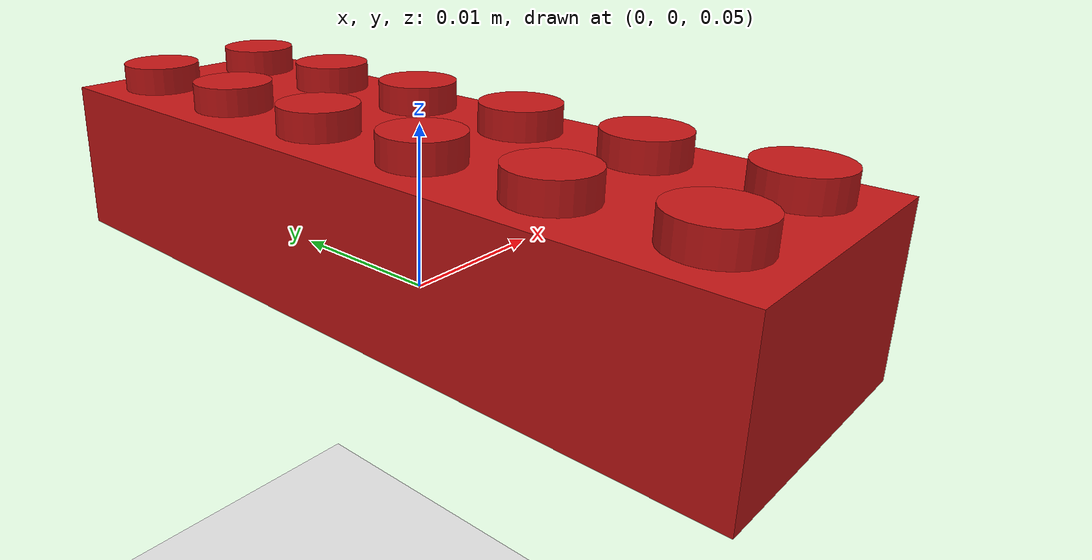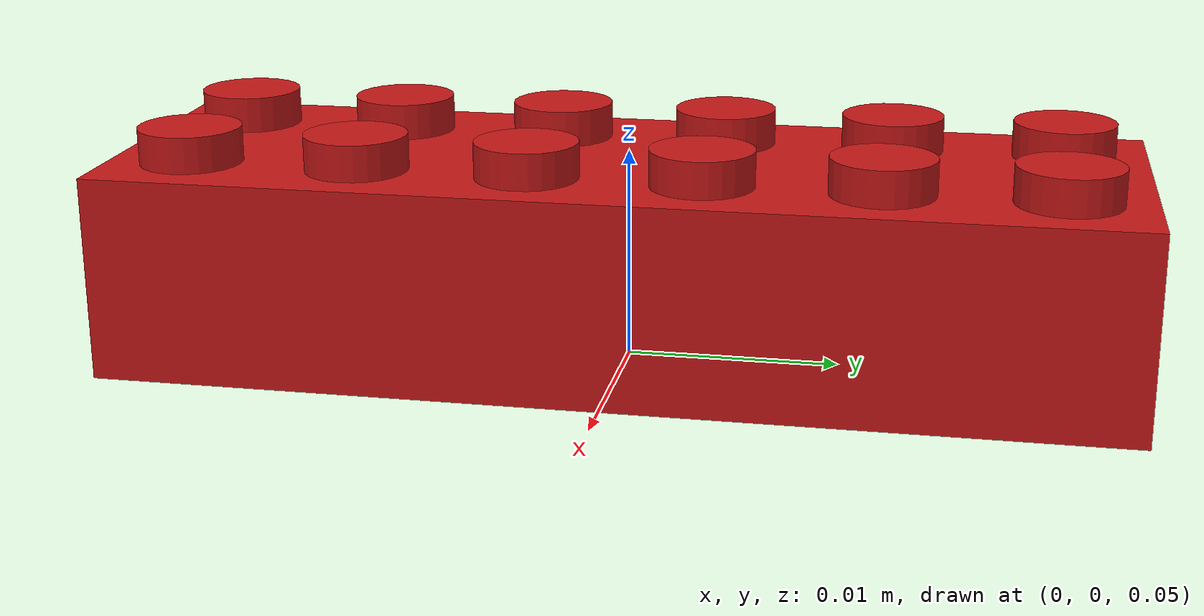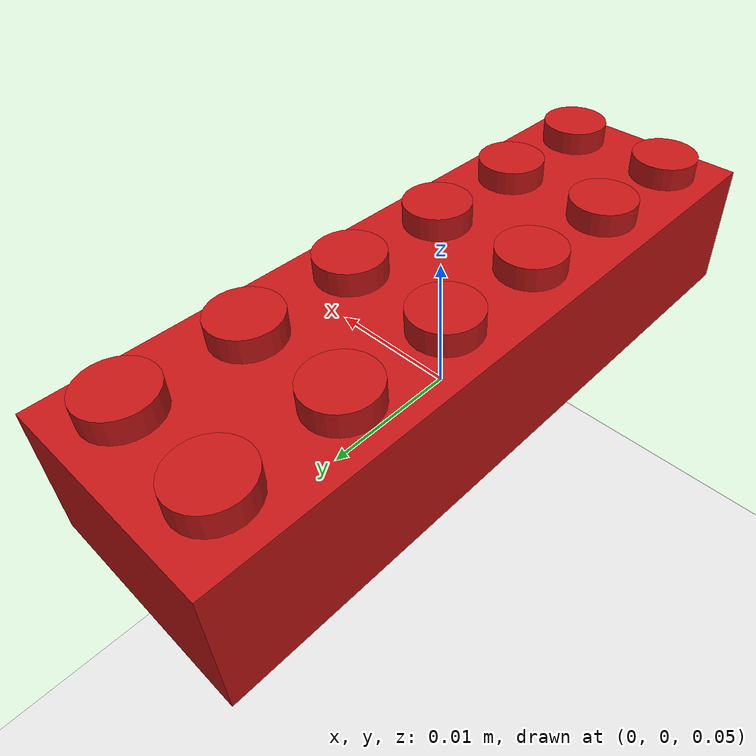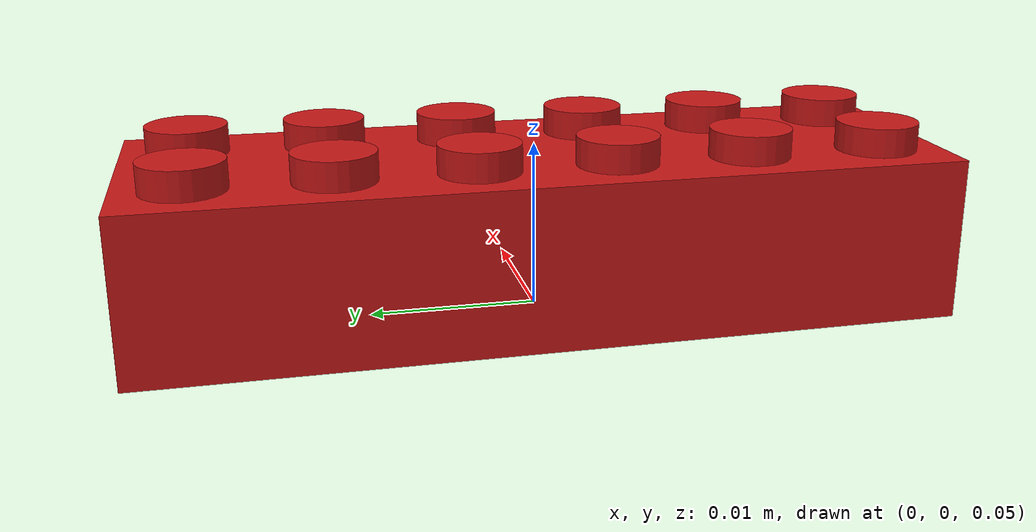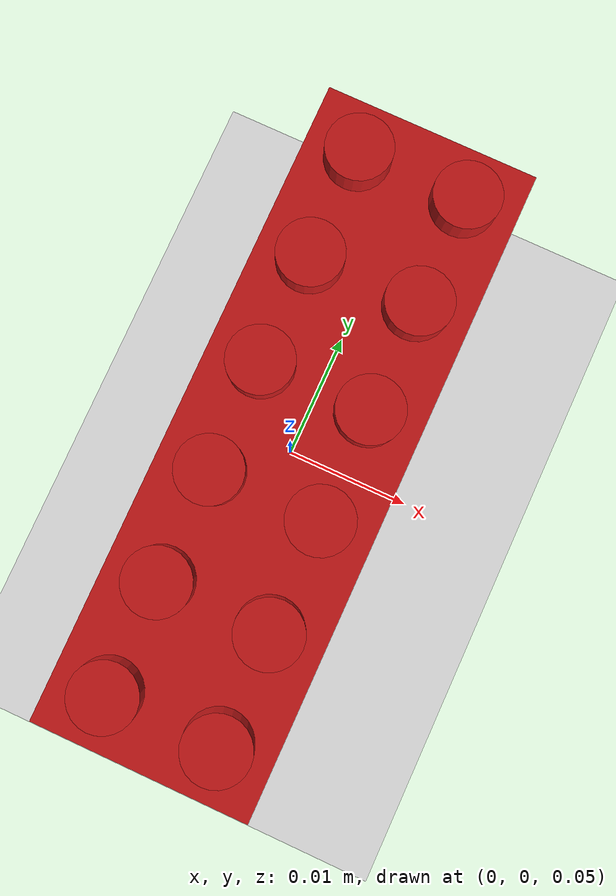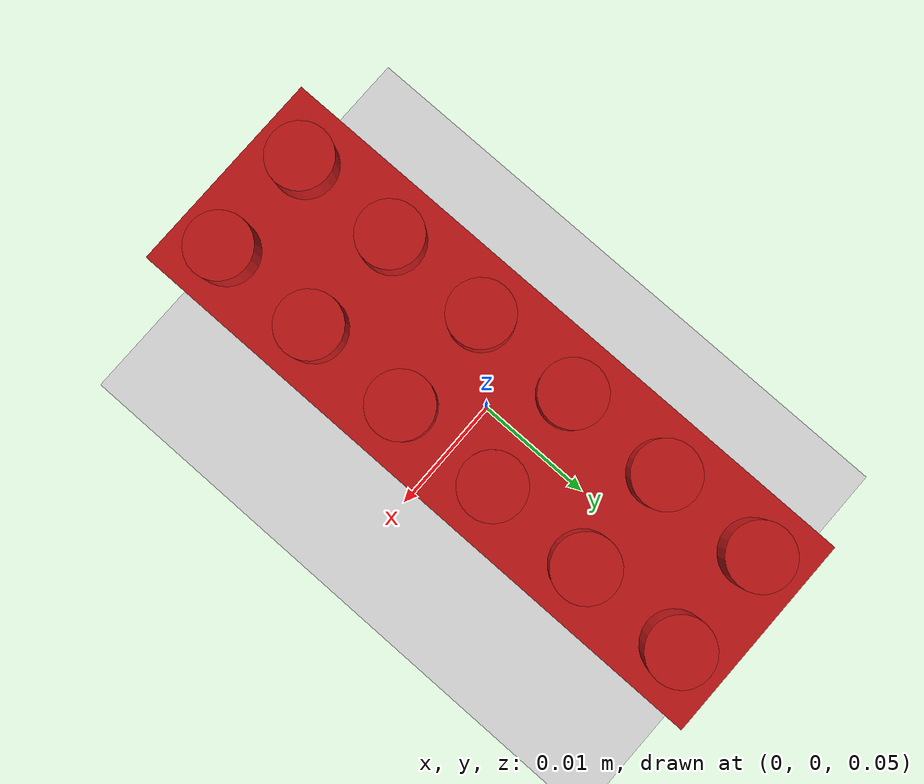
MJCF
<mujoco model="brick_2x6">
    <compiler inertiafromgeom="auto" angle="radian" />
    <option timestep="0.002" gravity="0 0 -9.81" integrator="implicitfast" cone="pyramidal" solver="Newton" iterations="80" ls_iterations="10" />
    <default>
        <default class="lego/stud">
            <geom contype="6" conaffinity="7" solref="0.003 1.0" solimp="0.97 0.995 0.001 0.5 4" friction="0.65 0.005 0.005" condim="4" />
        </default>
        <default class="lego/tube">
            <geom contype="4" conaffinity="4" solref="0.003 1.0" solimp="0.97 0.995 0.001 0.5 4" friction="0.65 0.005 0.005" condim="4" />
        </default>
        <default class="lego/brick_surface">
            <geom contype="2" conaffinity="3" solref="0.005 1.0" solimp="0.9 0.95 0.001 0.5 2" friction="0.4 0.005 0.002" condim="3" />
        </default>
        <default class="lego/baseplate">
            <geom contype="2" conaffinity="3" solref="0.005 1.0" solimp="0.9 0.95 0.001 0.5 2" friction="0.6 0.01 0.005" condim="3" />
        </default>
    </default>
    <worldbody>
        <light diffuse="0.8 0.8 0.8" pos="0 0 1" dir="0 0 -1" />
        <geom name="floor" type="plane" size="1 1 0.1" rgba="0.9 0.9 0.9 1" contype="1" conaffinity="1" />
        <body name="brick_2x6" pos="0 0 0.05">
            <freejoint name="brick_2x6_joint" />
            <inertial pos="0 0 0.0048" mass="0.002671" diaginertia="0.0000005291 0.0000000761 0.0000005642" />
            <geom class="lego/brick_surface" name="brick_2x6_shell_top" type="box" size="0.0079 0.0239 0.0005" pos="0 0 0.0091" group="3" />
            <geom class="lego/brick_surface" name="brick_2x6_shell_lx" type="box" size="0.0006 0.0239 0.0048" pos="-0.0073 0 0.0048" group="3" />
            <geom class="lego/brick_surface" name="brick_2x6_shell_rx" type="box" size="0.0006 0.0239 0.0048" pos="0.0073 0 0.0048" group="3" />
            <geom class="lego/brick_surface" name="brick_2x6_shell_fy" type="box" size="0.0067 0.0006 0.0048" pos="0 0.0233 0.0048" group="3" />
            <geom class="lego/brick_surface" name="brick_2x6_shell_by" type="box" size="0.0067 0.0006 0.0048" pos="0 -0.0233 0.0048" group="3" />
            <geom name="brick_2x6_shell_vis" type="box" size="0.0079 0.0239 0.0048" pos="0 0 0.0048" group="0" contype="0" conaffinity="0" rgba="0.78 0.09 0.09 1" />
            <geom class="lego/stud" name="brick_2x6_stud_0_0" type="cylinder" size="0.00235 0.00085" pos="-0.004 -0.02 0.01045" group="3" />
            <geom name="brick_2x6_stud_0_0_vis" type="cylinder" size="0.0024 0.00085" pos="-0.004 -0.02 0.01045" group="0" contype="0" conaffinity="0" rgba="0.78 0.09 0.09 1" />
            <geom class="lego/stud" name="brick_2x6_stud_0_1" type="cylinder" size="0.00235 0.00085" pos="-0.004 -0.012 0.01045" group="3" />
            <geom name="brick_2x6_stud_0_1_vis" type="cylinder" size="0.0024 0.00085" pos="-0.004 -0.012 0.01045" group="0" contype="0" conaffinity="0" rgba="0.78 0.09 0.09 1" />
            <geom class="lego/stud" name="brick_2x6_stud_0_2" type="cylinder" size="0.00235 0.00085" pos="-0.004 -0.004 0.01045" group="3" />
            <geom name="brick_2x6_stud_0_2_vis" type="cylinder" size="0.0024 0.00085" pos="-0.004 -0.004 0.01045" group="0" contype="0" conaffinity="0" rgba="0.78 0.09 0.09 1" />
            <geom class="lego/stud" name="brick_2x6_stud_0_3" type="cylinder" size="0.00235 0.00085" pos="-0.004 0.004 0.01045" group="3" />
            <geom name="brick_2x6_stud_0_3_vis" type="cylinder" size="0.0024 0.00085" pos="-0.004 0.004 0.01045" group="0" contype="0" conaffinity="0" rgba="0.78 0.09 0.09 1" />
            <geom class="lego/stud" name="brick_2x6_stud_0_4" type="cylinder" size="0.00235 0.00085" pos="-0.004 0.012 0.01045" group="3" />
            <geom name="brick_2x6_stud_0_4_vis" type="cylinder" size="0.0024 0.00085" pos="-0.004 0.012 0.01045" group="0" contype="0" conaffinity="0" rgba="0.78 0.09 0.09 1" />
            <geom class="lego/stud" name="brick_2x6_stud_0_5" type="cylinder" size="0.00235 0.00085" pos="-0.004 0.02 0.01045" group="3" />
            <geom name="brick_2x6_stud_0_5_vis" type="cylinder" size="0.0024 0.00085" pos="-0.004 0.02 0.01045" group="0" contype="0" conaffinity="0" rgba="0.78 0.09 0.09 1" />
            <geom class="lego/stud" name="brick_2x6_stud_1_0" type="cylinder" size="0.00235 0.00085" pos="0.004 -0.02 0.01045" group="3" />
            <geom name="brick_2x6_stud_1_0_vis" type="cylinder" size="0.0024 0.00085" pos="0.004 -0.02 0.01045" group="0" contype="0" conaffinity="0" rgba="0.78 0.09 0.09 1" />
            <geom class="lego/stud" name="brick_2x6_stud_1_1" type="cylinder" size="0.00235 0.00085" pos="0.004 -0.012 0.01045" group="3" />
            <geom name="brick_2x6_stud_1_1_vis" type="cylinder" size="0.0024 0.00085" pos="0.004 -0.012 0.01045" group="0" contype="0" conaffinity="0" rgba="0.78 0.09 0.09 1" />
            <geom class="lego/stud" name="brick_2x6_stud_1_2" type="cylinder" size="0.00235 0.00085" pos="0.004 -0.004 0.01045" group="3" />
            <geom name="brick_2x6_stud_1_2_vis" type="cylinder" size="0.0024 0.00085" pos="0.004 -0.004 0.01045" group="0" contype="0" conaffinity="0" rgba="0.78 0.09 0.09 1" />
            <geom class="lego/stud" name="brick_2x6_stud_1_3" type="cylinder" size="0.00235 0.00085" pos="0.004 0.004 0.01045" group="3" />
            <geom name="brick_2x6_stud_1_3_vis" type="cylinder" size="0.0024 0.00085" pos="0.004 0.004 0.01045" group="0" contype="0" conaffinity="0" rgba="0.78 0.09 0.09 1" />
            <geom class="lego/stud" name="brick_2x6_stud_1_4" type="cylinder" size="0.00235 0.00085" pos="0.004 0.012 0.01045" group="3" />
            <geom name="brick_2x6_stud_1_4_vis" type="cylinder" size="0.0024 0.00085" pos="0.004 0.012 0.01045" group="0" contype="0" conaffinity="0" rgba="0.78 0.09 0.09 1" />
            <geom class="lego/stud" name="brick_2x6_stud_1_5" type="cylinder" size="0.00235 0.00085" pos="0.004 0.02 0.01045" group="3" />
            <geom name="brick_2x6_stud_1_5_vis" type="cylinder" size="0.0024 0.00085" pos="0.004 0.02 0.01045" group="0" contype="0" conaffinity="0" rgba="0.78 0.09 0.09 1" />
            <geom class="lego/tube" name="brick_2x6_tube_0_c0" type="capsule" size="0.00055" fromto="0.003 -0.016 0 0.003 -0.016 0.0017" group="3" />
            <geom class="lego/tube" name="brick_2x6_tube_0_c1" type="capsule" size="0.00055" fromto="0.002121 -0.013879 0 0.002121 -0.013879 0.0017" group="3" />
            <geom class="lego/tube" name="brick_2x6_tube_0_c2" type="capsule" size="0.00055" fromto="0 -0.013 0 0 -0.013 0.0017" group="3" />
            <geom class="lego/tube" name="brick_2x6_tube_0_c3" type="capsule" size="0.00055" fromto="-0.002121 -0.013879 0 -0.002121 -0.013879 0.0017" group="3" />
            <geom class="lego/tube" name="brick_2x6_tube_0_c4" type="capsule" size="0.00055" fromto="-0.003 -0.016 0 -0.003 -0.016 0.0017" group="3" />
            <geom class="lego/tube" name="brick_2x6_tube_0_c5" type="capsule" size="0.00055" fromto="-0.002121 -0.018121 0 -0.002121 -0.018121 0.0017" group="3" />
            <geom class="lego/tube" name="brick_2x6_tube_0_c6" type="capsule" size="0.00055" fromto="-0 -0.019 0 -0 -0.019 0.0017" group="3" />
            <geom class="lego/tube" name="brick_2x6_tube_0_c7" type="capsule" size="0.00055" fromto="0.002121 -0.018121 0 0.002121 -0.018121 0.0017" group="3" />
            <geom class="lego/tube" name="brick_2x6_tube_1_c0" type="capsule" size="0.00055" fromto="0.003 -0.008 0 0.003 -0.008 0.0017" group="3" />
            <geom class="lego/tube" name="brick_2x6_tube_1_c1" type="capsule" size="0.00055" fromto="0.002121 -0.005879 0 0.002121 -0.005879 0.0017" group="3" />
            <geom class="lego/tube" name="brick_2x6_tube_1_c2" type="capsule" size="0.00055" fromto="0 -0.005 0 0 -0.005 0.0017" group="3" />
            <geom class="lego/tube" name="brick_2x6_tube_1_c3" type="capsule" size="0.00055" fromto="-0.002121 -0.005879 0 -0.002121 -0.005879 0.0017" group="3" />
            <geom class="lego/tube" name="brick_2x6_tube_1_c4" type="capsule" size="0.00055" fromto="-0.003 -0.008 0 -0.003 -0.008 0.0017" group="3" />
            <geom class="lego/tube" name="brick_2x6_tube_1_c5" type="capsule" size="0.00055" fromto="-0.002121 -0.010121 0 -0.002121 -0.010121 0.0017" group="3" />
            <geom class="lego/tube" name="brick_2x6_tube_1_c6" type="capsule" size="0.00055" fromto="-0 -0.011 0 -0 -0.011 0.0017" group="3" />
            <geom class="lego/tube" name="brick_2x6_tube_1_c7" type="capsule" size="0.00055" fromto="0.002121 -0.010121 0 0.002121 -0.010121 0.0017" group="3" />
            <geom class="lego/tube" name="brick_2x6_tube_2_c0" type="capsule" size="0.00055" fromto="0.003 0 0 0.003 0 0.0017" group="3" />
            <geom class="lego/tube" name="brick_2x6_tube_2_c1" type="capsule" size="0.00055" fromto="0.002121 0.002121 0 0.002121 0.002121 0.0017" group="3" />
            <geom class="lego/tube" name="brick_2x6_tube_2_c2" type="capsule" size="0.00055" fromto="0 0.003 0 0 0.003 0.0017" group="3" />
            <geom class="lego/tube" name="brick_2x6_tube_2_c3" type="capsule" size="0.00055" fromto="-0.002121 0.002121 0 -0.002121 0.002121 0.0017" group="3" />
            <geom class="lego/tube" name="brick_2x6_tube_2_c4" type="capsule" size="0.00055" fromto="-0.003 0 0 -0.003 0 0.0017" group="3" />
            <geom class="lego/tube" name="brick_2x6_tube_2_c5" type="capsule" size="0.00055" fromto="-0.002121 -0.002121 0 -0.002121 -0.002121 0.0017" group="3" />
            <geom class="lego/tube" name="brick_2x6_tube_2_c6" type="capsule" size="0.00055" fromto="-0 -0.003 0 -0 -0.003 0.0017" group="3" />
            <geom class="lego/tube" name="brick_2x6_tube_2_c7" type="capsule" size="0.00055" fromto="0.002121 -0.002121 0 0.002121 -0.002121 0.0017" group="3" />
            <geom class="lego/tube" name="brick_2x6_tube_3_c0" type="capsule" size="0.00055" fromto="0.003 0.008 0 0.003 0.008 0.0017" group="3" />
            <geom class="lego/tube" name="brick_2x6_tube_3_c1" type="capsule" size="0.00055" fromto="0.002121 0.010121 0 0.002121 0.010121 0.0017" group="3" />
            <geom class="lego/tube" name="brick_2x6_tube_3_c2" type="capsule" size="0.00055" fromto="0 0.011 0 0 0.011 0.0017" group="3" />
            <geom class="lego/tube" name="brick_2x6_tube_3_c3" type="capsule" size="0.00055" fromto="-0.002121 0.010121 0 -0.002121 0.010121 0.0017" group="3" />
            <geom class="lego/tube" name="brick_2x6_tube_3_c4" type="capsule" size="0.00055" fromto="-0.003 0.008 0 -0.003 0.008 0.0017" group="3" />
            <geom class="lego/tube" name="brick_2x6_tube_3_c5" type="capsule" size="0.00055" fromto="-0.002121 0.005879 0 -0.002121 0.005879 0.0017" group="3" />
            <geom class="lego/tube" name="brick_2x6_tube_3_c6" type="capsule" size="0.00055" fromto="-0 0.005 0 -0 0.005 0.0017" group="3" />
            <geom class="lego/tube" name="brick_2x6_tube_3_c7" type="capsule" size="0.00055" fromto="0.002121 0.005879 0 0.002121 0.005879 0.0017" group="3" />
            <geom class="lego/tube" name="brick_2x6_tube_4_c0" type="capsule" size="0.00055" fromto="0.003 0.016 0 0.003 0.016 0.0017" group="3" />
            <geom class="lego/tube" name="brick_2x6_tube_4_c1" type="capsule" size="0.00055" fromto="0.002121 0.018121 0 0.002121 0.018121 0.0017" group="3" />
            <geom class="lego/tube" name="brick_2x6_tube_4_c2" type="capsule" size="0.00055" fromto="0 0.019 0 0 0.019 0.0017" group="3" />
            <geom class="lego/tube" name="brick_2x6_tube_4_c3" type="capsule" size="0.00055" fromto="-0.002121 0.018121 0 -0.002121 0.018121 0.0017" group="3" />
            <geom class="lego/tube" name="brick_2x6_tube_4_c4" type="capsule" size="0.00055" fromto="-0.003 0.016 0 -0.003 0.016 0.0017" group="3" />
            <geom class="lego/tube" name="brick_2x6_tube_4_c5" type="capsule" size="0.00055" fromto="-0.002121 0.013879 0 -0.002121 0.013879 0.0017" group="3" />
            <geom class="lego/tube" name="brick_2x6_tube_4_c6" type="capsule" size="0.00055" fromto="-0 0.013 0 -0 0.013 0.0017" group="3" />
            <geom class="lego/tube" name="brick_2x6_tube_4_c7" type="capsule" size="0.00055" fromto="0.002121 0.013879 0 0.002121 0.013879 0.0017" group="3" />
        </body>
    </worldbody>
</mujoco>
